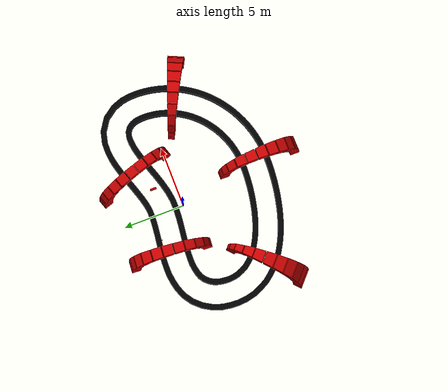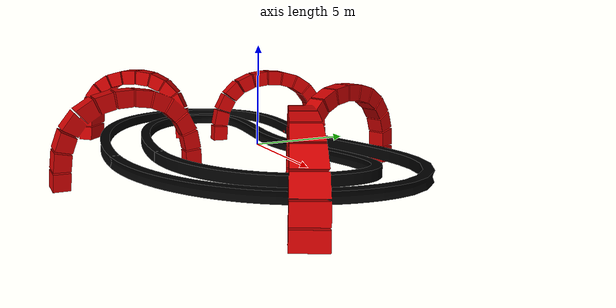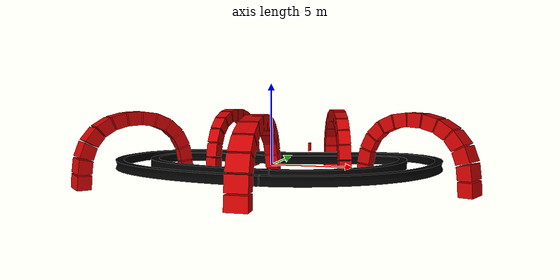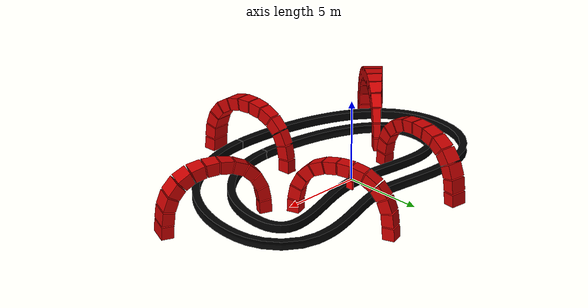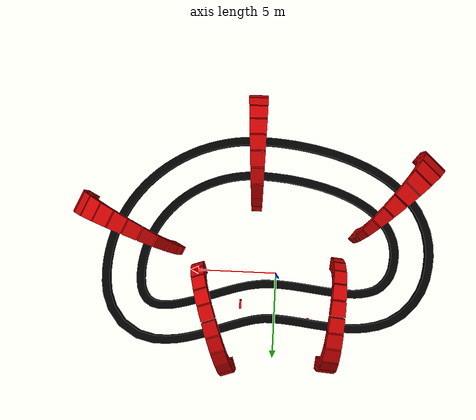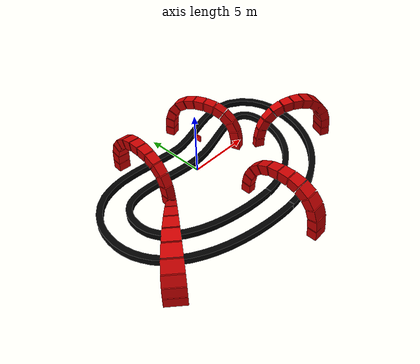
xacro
<?xml version="1.0"?>
<robot xmlns:xacro="http://www.ros.org/wiki/xacro" name="race_track">

<link name="race_track_link">

    <collision>
      <origin xyz="0 0 0" rpy="0 0 0"/>
      <geometry>
      <mesh filename="package://circuit/src/urdf/meshes/track_map.stl" scale="1 1 1"/>
      </geometry>
    </collision>
    <visual>

      <origin xyz="0 0 0" rpy="0 0 0"/>
      <geometry>
      <mesh filename="package://circuit/src/urdf/meshes/circuit_visual.dae" scale="1 1 1">
      </mesh>
      </geometry>

    </visual>

    <inertial>
      <origin xyz="0 0 0" rpy="0 0 0"/>
      <mass value="1"/>
      <inertia
        ixx="1.0" ixy="0.0" ixz="0.0"
        iyy="1.0" iyz="0.0"
        izz="1.0"/>
    </inertial>
</link>
<link name="world">

<inertial>
      <origin xyz="0 0 0" rpy="0 0 0"/>
      <mass value="1"/>
      <inertia
        ixx="1.0" ixy="0.0" ixz="0.0"
        iyy="1.0" iyz="0.0"
        izz="1.0"/>
    </inertial>

  </link>

  <joint name="fixed" type="fixed">
    <parent link="world"/>
    <child link="race_track_link"/>
  </joint>

  <link name="screen_score">
    <origin xyz="0 0 0" rpy="0 0 0"/>
    <collision>
      <origin xyz="0 0 0" rpy="0 0 0"/>
      <geometry>
    <box size="0.5 0.5 0.1"/>
      </geometry>
    </collision>
    <visual>
      <origin xyz="0 0 0" rpy="0 0 0"/>
      <geometry>
    <box size="0.5 0.5 0.1"/>
      </geometry>
      <material name="Red">
         <color rgba="1.0 0.0 0.0 1.0"/>
        </material>
    </visual>
    <inertial>
      <mass value="1e-5" />
      <origin xyz="0 0 0" rpy="0 0 0"/>
      <inertia ixx="1e-6" ixy="0" ixz="0" iyy="1e-6" iyz="0" izz="1e-6" />
    </inertial>
  </link>

    <joint name="screen_joint" type="fixed">
      <parent link="race_track_link"/>
      <child link="screen_score"/>
      <origin xyz="2 1.8 1" rpy="1.57 0 -1.57"/>
    </joint>

<gazebo reference="screen_score">
  <visual>
    <plugin name="display_video_controller" filename="libgazebo_ros_video.so">
      <topicName>image_panel</topicName>
      <height>512</height>
      <width>512</width>
    </plugin>
  </visual>
</gazebo>

  <link name="camera_finish">
  <origin xyz="-2 2.6 0.1" rpy="0 0 -1.57"/>
    <collision>
      <origin xyz="0 0 0" rpy="0 0 0"/>
      <geometry>
    <box size="0.1 0.1 0.1"/>
      </geometry>
    </collision>

    <visual>
      <origin xyz="0 0 0" rpy="0 0 0"/>
      <geometry>
    <box size="0.1 0.1 0.1"/>
      </geometry>
      <material name="Red">
         <color rgba="1.0 0.0 0.0 1.0"/>
        </material>
    </visual>

    <inertial>
      <mass value="1e-5" />
      <origin xyz="0 0 0" rpy="0 0 0"/>
      <inertia ixx="1e-6" ixy="0" ixz="0" iyy="1e-6" iyz="0" izz="1e-6" />
    </inertial>

  </link>
    <joint name="my_joint" type="fixed">
    <origin xyz="-2 2.6 0.1" rpy="0 0 -1.57"/>

   <parent link="race_track_link"/>
   <child link="camera_finish"/>

   </joint>

   <gazebo reference="camera_finish">
    <sensor type="camera" name="camera1">
      <update_rate>30.0</update_rate>
      <camera name="head">
        <horizontal_fov>1.3962634</horizontal_fov>
        <image>
          <width>40</width>
          <height>40</height>
          <format>R8G8B8</format>
        </image>
        <clip>
          <near>0.02</near>
          <far>300</far>
        </clip>
        <noise>
          <type>gaussian</type>
          <!-- Noise is sampled independently per pixel on each frame.
               That pixel's noise value is added to each of its color
               channels, which at that point lie in the range [0,1]. -->
          <mean>0.0</mean>
          <stddev>0.007</stddev>
        </noise>
      </camera>
      <plugin name="camera_controller" filename="libgazebo_ros_camera.so">
        <alwaysOn>true</alwaysOn>
        <updateRate>10</updateRate>
        <cameraName>/race_track/finish_cam</cameraName>
        <imageTopicName>image_raw</imageTopicName>
        <cameraInfoTopicName>camera_info</cameraInfoTopicName>
        <frameName>camera_link</frameName>
        <hackBaseline>0.07</hackBaseline>
        <distortionK1>0.0</distortionK1>
        <distortionK2>0.0</distortionK2>
        <distortionK3>0.0</distortionK3>
        <distortionT1>0.0</distortionT1>
        <distortionT2>0.0</distortionT2>
      </plugin>
    </sensor>
  </gazebo>

</robot>
